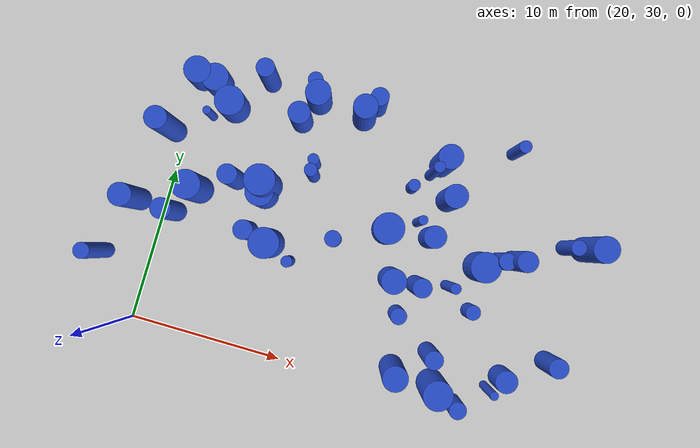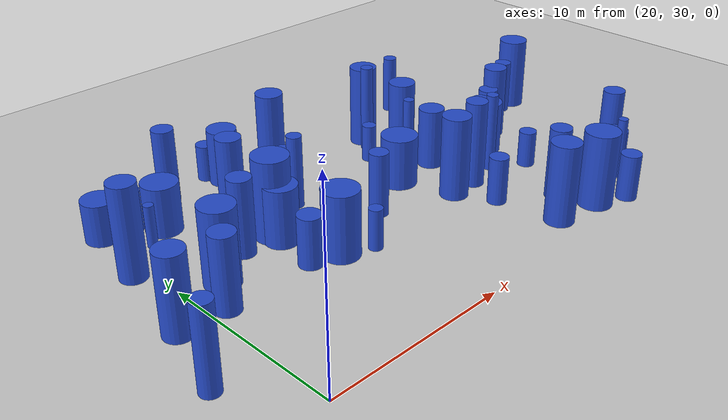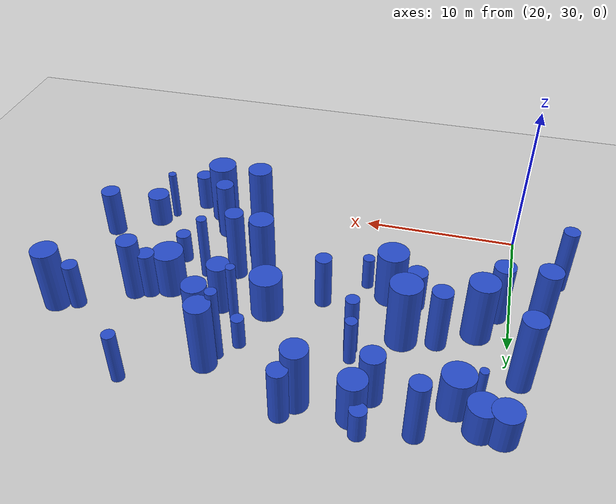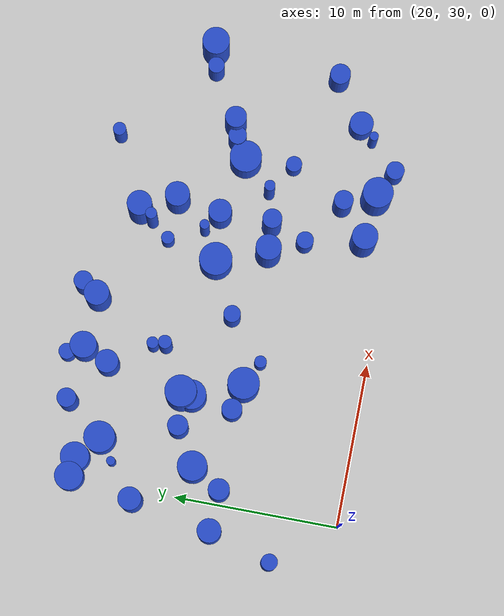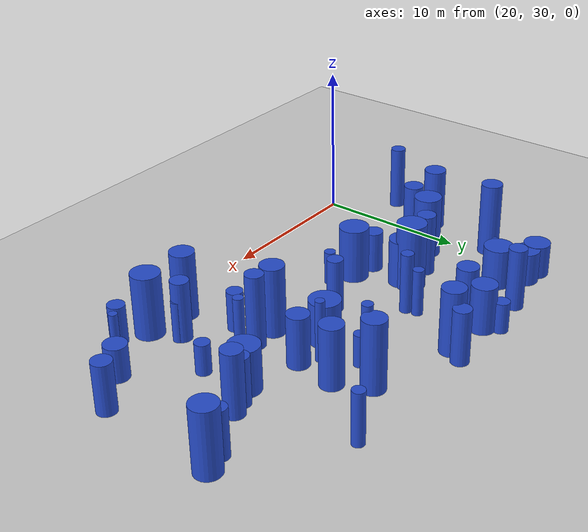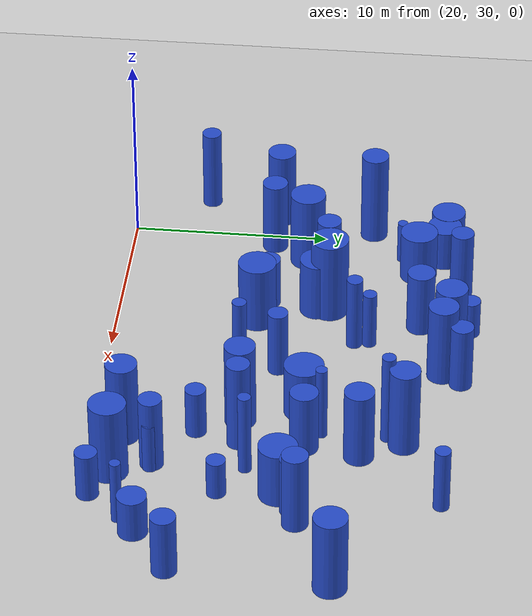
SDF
<sdf version="1.6">
 <world name="default">
  <model name="ground_plane">
   <static>1</static>
   <link name="link">
    <collision name="collision">
     <geometry><plane><normal>0 0 1</normal><size>100 100</size></plane></geometry>
     <surface><friction><ode><mu>100</mu><mu2>50</mu2></ode></friction></surface>
    </collision>
    <visual name="visual">
     <cast_shadows>0</cast_shadows>
     <geometry><plane><normal>0 0 1</normal><size>100 100</size></plane></geometry>
     <material>
      <script><uri>file://media/materials/scripts/gazebo.material</uri><name>Gazebo/Grey</name></script>
     </material>
    </visual>
   </link>
  </model>
  <model name="6">
   <static>0</static>
   <link name="link">
    <inertial>
     <mass>2</mass>
     <inertia><ixx>1.20336</ixx><ixy>0</ixy><ixz>0</ixz><iyy>1.20336</iyy><iyz>0</iyz><izz>0.750486</izz></inertia>
    </inertial>
    <collision name="collision">
     <geometry><cylinder><length>2.22906</length><radius>0.866306</radius></cylinder></geometry>
     <surface><contact><collide_without_contact>1</collide_without_contact></contact></surface>
    </collision>
    <visual name="visual">
     <geometry><cylinder><length>2.22906</length><radius>0.866306</radius></cylinder></geometry>
     <material>
      <script><uri>file://media/materials/scripts/gazebo.material</uri><name>Gazebo/Blue</name></script>
     </material>
    </visual>
    <gravity>0</gravity>
   </link>
   <pose>20.0201 46.401 1.11453 0 -0 0</pose>
  </model>
  <model name="15">
   <static>0</static>
   <link name="link">
    <inertial>
     <mass>2</mass>
     <inertia><ixx>2.62862</ixx><ixy>0</ixy><ixz>0</ixz><iyy>2.62862</iyy><iyz>0</iyz><izz>0.931065</izz></inertia>
    </inertial>
    <collision name="collision">
     <geometry><cylinder><length>3.60257</length><radius>0.964917</radius></cylinder></geometry>
     <surface><contact><collide_without_contact>1</collide_without_contact></contact></surface>
    </collision>
    <visual name="visual">
     <geometry><cylinder><length>3.60257</length><radius>0.964917</radius></cylinder></geometry>
     <material>
      <script><uri>file://media/materials/scripts/gazebo.material</uri><name>Gazebo/Blue</name></script>
     </material>
    </visual>
    <gravity>0</gravity>
   </link>
   <pose>27.3165 37.1361 1.80129 0 -0 0</pose>
  </model>
  <model name="16">
   <static>0</static>
   <link name="link">
    <inertial>
     <mass>2</mass>
     <inertia><ixx>1.97388</ixx><ixy>0</ixy><ixz>0</ixz><iyy>1.97388</iyy><iyz>0</iyz><izz>0.383371</izz></inertia>
    </inertial>
    <collision name="collision">
     <geometry><cylinder><length>3.27004</length><radius>0.619169</radius></cylinder></geometry>
     <surface><contact><collide_without_contact>1</collide_without_contact></contact></surface>
    </collision>
    <visual name="visual">
     <geometry><cylinder><length>3.27004</length><radius>0.619169</radius></cylinder></geometry>
     <material>
      <script><uri>file://media/materials/scripts/gazebo.material</uri><name>Gazebo/Blue</name></script>
     </material>
    </visual>
    <gravity>0</gravity>
   </link>
   <pose>46.7633 34.854 1.63502 0 -0 0</pose>
  </model>
  <model name="23">
   <static>0</static>
   <link name="link">
    <inertial>
     <mass>2</mass>
     <inertia>
      <ixx>1.99669</ixx>
      <ixy>0</ixy>
      <ixz>0</ixz>
      <iyy>1.99669</iyy>
      <iyz>0</iyz>
      <izz>0.0728803</izz>
     </inertia>
    </inertial>
    <collision name="collision">
     <geometry><cylinder><length>3.42951</length><radius>0.269963</radius></cylinder></geometry>
     <surface><contact><collide_without_contact>1</collide_without_contact></contact></surface>
    </collision>
    <visual name="visual">
     <geometry><cylinder><length>3.42951</length><radius>0.269963</radius></cylinder></geometry>
     <material>
      <script><uri>file://media/materials/scripts/gazebo.material</uri><name>Gazebo/Blue</name></script>
     </material>
    </visual>
    <gravity>0</gravity>
   </link>
   <pose>43.393 32.1814 1.71475 0 -0 0</pose>
  </model>
  <model name="33">
   <static>0</static>
   <link name="link">
    <inertial>
     <mass>2</mass>
     <inertia><ixx>3.32594</ixx><ixy>0</ixy><ixz>0</ixz><iyy>3.32594</iyy><iyz>0</iyz><izz>0.675286</izz></inertia>
    </inertial>
    <collision name="collision">
     <geometry><cylinder><length>4.23436</length><radius>0.821758</radius></cylinder></geometry>
     <surface><contact><collide_without_contact>1</collide_without_contact></contact></surface>
    </collision>
    <visual name="visual">
     <geometry><cylinder><length>4.23436</length><radius>0.821758</radius></cylinder></geometry>
     <material>
      <script><uri>file://media/materials/scripts/gazebo.material</uri><name>Gazebo/Blue</name></script>
     </material>
    </visual>
    <gravity>0</gravity>
   </link>
   <pose>47.2032 42.5605 2.11718 0 -0 0</pose>
  </model>
  <model name="35">
   <static>0</static>
   <link name="link">
    <inertial>
     <mass>2</mass>
     <inertia><ixx>3.57551</ixx><ixy>0</ixy><ixz>0</ixz><iyy>3.57551</iyy><iyz>0</iyz><izz>0.622149</izz></inertia>
    </inertial>
    <collision name="collision">
     <geometry><cylinder><length>4.42568</length><radius>0.788764</radius></cylinder></geometry>
     <surface><contact><collide_without_contact>1</collide_without_contact></contact></surface>
    </collision>
    <visual name="visual">
     <geometry><cylinder><length>4.42568</length><radius>0.788764</radius></cylinder></geometry>
     <material>
      <script><uri>file://media/materials/scripts/gazebo.material</uri><name>Gazebo/Blue</name></script>
     </material>
    </visual>
    <gravity>0</gravity>
   </link>
   <pose>37.2175 31.6348 2.21284 0 -0 0</pose>
  </model>
  <model name="37">
   <static>0</static>
   <link name="link">
    <inertial>
     <mass>2</mass>
     <inertia><ixx>3.28854</ixx><ixy>0</ixy><ixz>0</ixz><iyy>3.28854</iyy><iyz>0</iyz><izz>0.530708</izz></inertia>
    </inertial>
    <collision name="collision">
     <geometry><cylinder><length>4.259</length><radius>0.728497</radius></cylinder></geometry>
     <surface><contact><collide_without_contact>1</collide_without_contact></contact></surface>
    </collision>
    <visual name="visual">
     <geometry><cylinder><length>4.259</length><radius>0.728497</radius></cylinder></geometry>
     <material>
      <script><uri>file://media/materials/scripts/gazebo.material</uri><name>Gazebo/Blue</name></script>
     </material>
    </visual>
    <gravity>0</gravity>
   </link>
   <pose>18.3013 37.5129 2.1295 0 -0 0</pose>
  </model>
  <model name="43">
   <static>0</static>
   <link name="link">
    <inertial>
     <mass>2</mass>
     <inertia>
      <ixx>0.804984</ixx>
      <ixy>0</ixy>
      <ixz>0</ixz>
      <iyy>0.804984</iyy>
      <iyz>0</iyz>
      <izz>0.236242</izz>
     </inertia>
    </inertial>
    <collision name="collision">
     <geometry><cylinder><length>2.03007</length><radius>0.486048</radius></cylinder></geometry>
     <surface><contact><collide_without_contact>1</collide_without_contact></contact></surface>
    </collision>
    <visual name="visual">
     <geometry><cylinder><length>2.03007</length><radius>0.486048</radius></cylinder></geometry>
     <material>
      <script><uri>file://media/materials/scripts/gazebo.material</uri><name>Gazebo/Blue</name></script>
     </material>
    </visual>
    <gravity>0</gravity>
   </link>
   <pose>27.3471 47.9507 1.01503 0 -0 0</pose>
  </model>
  <model name="44">
   <static>0</static>
   <link name="link">
    <inertial>
     <mass>2</mass>
     <inertia><ixx>4.17462</ixx><ixy>0</ixy><ixz>0</ixz><iyy>4.17462</iyy><iyz>0</iyz><izz>0.119229</izz></inertia>
    </inertial>
    <collision name="collision">
     <geometry><cylinder><length>4.96891</length><radius>0.345295</radius></cylinder></geometry>
     <surface><contact><collide_without_contact>1</collide_without_contact></contact></surface>
    </collision>
    <visual name="visual">
     <geometry><cylinder><length>4.96891</length><radius>0.345295</radius></cylinder></geometry>
     <material>
      <script><uri>file://media/materials/scripts/gazebo.material</uri><name>Gazebo/Blue</name></script>
     </material>
    </visual>
    <gravity>0</gravity>
   </link>
   <pose>36.1613 44.4005 2.48445 0 -0 0</pose>
  </model>
  <model name="55">
   <static>0</static>
   <link name="link">
    <inertial>
     <mass>2</mass>
     <inertia><ixx>3.00682</ixx><ixy>0</ixy><ixz>0</ixz><iyy>3.00682</iyy><iyz>0</iyz><izz>0.336828</izz></inertia>
    </inertial>
    <collision name="collision">
     <geometry><cylinder><length>4.1268</length><radius>0.580369</radius></cylinder></geometry>
     <surface><contact><collide_without_contact>1</collide_without_contact></contact></surface>
    </collision>
    <visual name="visual">
     <geometry><cylinder><length>4.1268</length><radius>0.580369</radius></cylinder></geometry>
     <material>
      <script><uri>file://media/materials/scripts/gazebo.material</uri><name>Gazebo/Blue</name></script>
     </material>
    </visual>
    <gravity>0</gravity>
   </link>
   <pose>24.4847 47.3087 2.0634 0 -0 0</pose>
  </model>
  <model name="56">
   <static>0</static>
   <link name="link">
    <inertial>
     <mass>2</mass>
     <inertia>
      <ixx>0.820719</ixx>
      <ixy>0</ixy>
      <ixz>0</ixz>
      <iyy>0.820719</iyy>
      <iyz>0</iyz>
      <izz>0.154265</izz>
     </inertia>
    </inertial>
    <collision name="collision">
     <geometry><cylinder><length>2.11223</length><radius>0.392766</radius></cylinder></geometry>
     <surface><contact><collide_without_contact>1</collide_without_contact></contact></surface>
    </collision>
    <visual name="visual">
     <geometry><cylinder><length>2.11223</length><radius>0.392766</radius></cylinder></geometry>
     <material>
      <script><uri>file://media/materials/scripts/gazebo.material</uri><name>Gazebo/Blue</name></script>
     </material>
    </visual>
    <gravity>0</gravity>
   </link>
   <pose>35.2204 43.2712 1.05612 0 -0 0</pose>
  </model>
  <model name="57">
   <static>0</static>
   <link name="link">
    <inertial>
     <mass>2</mass>
     <inertia><ixx>1.80639</ixx><ixy>0</ixy><ixz>0</ixz><iyy>1.80639</iyy><iyz>0</iyz><izz>0.301855</izz></inertia>
    </inertial>
    <collision name="collision">
     <geometry><cylinder><length>3.15163</length><radius>0.549413</radius></cylinder></geometry>
     <surface><contact><collide_without_contact>1</collide_without_contact></contact></surface>
    </collision>
    <visual name="visual">
     <geometry><cylinder><length>3.15163</length><radius>0.549413</radius></cylinder></geometry>
     <material>
      <script><uri>file://media/materials/scripts/gazebo.material</uri><name>Gazebo/Blue</name></script>
     </material>
    </visual>
    <gravity>0</gravity>
   </link>
   <pose>41.9771 40.2594 1.57581 0 -0 0</pose>
  </model>
  <model name="61">
   <static>0</static>
   <link name="link">
    <inertial>
     <mass>2</mass>
     <inertia><ixx>1.07857</ixx><ixy>0</ixy><ixz>0</ixz><iyy>1.07857</iyy><iyz>0</iyz><izz>0.520724</izz></inertia>
    </inertial>
    <collision name="collision">
     <geometry><cylinder><length>2.21568</length><radius>0.721612</radius></cylinder></geometry>
     <surface><contact><collide_without_contact>1</collide_without_contact></contact></surface>
    </collision>
    <visual name="visual">
     <geometry><cylinder><length>2.21568</length><radius>0.721612</radius></cylinder></geometry>
     <material>
      <script><uri>file://media/materials/scripts/gazebo.material</uri><name>Gazebo/Blue</name></script>
     </material>
    </visual>
    <gravity>0</gravity>
   </link>
   <pose>44.2138 33.044 1.10784 0 -0 0</pose>
  </model>
  <model name="69">
   <static>0</static>
   <link name="link">
    <inertial>
     <mass>2</mass>
     <inertia><ixx>1.84567</ixx><ixy>0</ixy><ixz>0</ixz><iyy>1.84567</iyy><iyz>0</iyz><izz>0.999192</izz></inertia>
    </inertial>
    <collision name="collision">
     <geometry><cylinder><length>2.8419</length><radius>0.999596</radius></cylinder></geometry>
     <surface><contact><collide_without_contact>1</collide_without_contact></contact></surface>
    </collision>
    <visual name="visual">
     <geometry><cylinder><length>2.8419</length><radius>0.999596</radius></cylinder></geometry>
     <material>
      <script><uri>file://media/materials/scripts/gazebo.material</uri><name>Gazebo/Blue</name></script>
     </material>
    </visual>
    <gravity>0</gravity>
   </link>
   <pose>34.4167 40.1677 1.42095 0 -0 0</pose>
  </model>
  <model name="70">
   <static>0</static>
   <link name="link">
    <inertial>
     <mass>2</mass>
     <inertia><ixx>3.11179</ixx><ixy>0</ixy><ixz>0</ixz><iyy>3.11179</iyy><iyz>0</iyz><izz>0.421659</izz></inertia>
    </inertial>
    <collision name="collision">
     <geometry><cylinder><length>4.17202</length><radius>0.649353</radius></cylinder></geometry>
     <surface><contact><collide_without_contact>1</collide_without_contact></contact></surface>
    </collision>
    <visual name="visual">
     <geometry><cylinder><length>4.17202</length><radius>0.649353</radius></cylinder></geometry>
     <material>
      <script><uri>file://media/materials/scripts/gazebo.material</uri><name>Gazebo/Blue</name></script>
     </material>
    </visual>
    <gravity>0</gravity>
   </link>
   <pose>42.8961 40.535 2.08601 0 -0 0</pose>
  </model>
  <model name="76">
   <static>0</static>
   <link name="link">
    <inertial>
     <mass>2</mass>
     <inertia><ixx>1.41605</ixx><ixy>0</ixy><ixz>0</ixz><iyy>1.41605</iyy><iyz>0</iyz><izz>0.391763</izz></inertia>
    </inertial>
    <collision name="collision">
     <geometry><cylinder><length>2.70574</length><radius>0.62591</radius></cylinder></geometry>
     <surface><contact><collide_without_contact>1</collide_without_contact></contact></surface>
    </collision>
    <visual name="visual">
     <geometry><cylinder><length>2.70574</length><radius>0.62591</radius></cylinder></geometry>
     <material>
      <script><uri>file://media/materials/scripts/gazebo.material</uri><name>Gazebo/Blue</name></script>
     </material>
    </visual>
    <gravity>0</gravity>
   </link>
   <pose>25.7306 37.5397 1.35287 0 -0 0</pose>
  </model>
  <model name="91">
   <static>0</static>
   <link name="link">
    <inertial>
     <mass>2</mass>
     <inertia><ixx>3.82607</ixx><ixy>0</ixy><ixz>0</ixz><iyy>3.82607</iyy><iyz>0</iyz><izz>0.596491</izz></inertia>
    </inertial>
    <collision name="collision">
     <geometry><cylinder><length>4.60076</length><radius>0.772328</radius></cylinder></geometry>
     <surface><contact><collide_without_contact>1</collide_without_contact></contact></surface>
    </collision>
    <visual name="visual">
     <geometry><cylinder><length>4.60076</length><radius>0.772328</radius></cylinder></geometry>
     <material>
      <script><uri>file://media/materials/scripts/gazebo.material</uri><name>Gazebo/Blue</name></script>
     </material>
    </visual>
    <gravity>0</gravity>
   </link>
   <pose>35.4947 37.1578 2.30038 0 -0 0</pose>
  </model>
  <model name="101">
   <static>0</static>
   <link name="link">
    <inertial>
     <mass>2</mass>
     <inertia><ixx>2.01847</ixx><ixy>0</ixy><ixz>0</ixz><iyy>2.01847</iyy><iyz>0</iyz><izz>0.154178</izz></inertia>
    </inertial>
    <collision name="collision">
     <geometry><cylinder><length>3.41296</length><radius>0.392655</radius></cylinder></geometry>
     <surface><contact><collide_without_contact>1</collide_without_contact></contact></surface>
    </collision>
    <visual name="visual">
     <geometry><cylinder><length>3.41296</length><radius>0.392655</radius></cylinder></geometry>
     <material>
      <script><uri>file://media/materials/scripts/gazebo.material</uri><name>Gazebo/Blue</name></script>
     </material>
    </visual>
    <gravity>0</gravity>
   </link>
   <pose>41.0047 47.2972 1.70648 0 -0 0</pose>
  </model>
  <model name="104">
   <static>0</static>
   <link name="link">
    <inertial>
     <mass>2</mass>
     <inertia><ixx>1.19968</ixx><ixy>0</ixy><ixz>0</ixz><iyy>1.19968</iyy><iyz>0</iyz><izz>0.772075</izz></inertia>
    </inertial>
    <collision name="collision">
     <geometry><cylinder><length>2.2095</length><radius>0.878678</radius></cylinder></geometry>
     <surface><contact><collide_without_contact>1</collide_without_contact></contact></surface>
    </collision>
    <visual name="visual">
     <geometry><cylinder><length>2.2095</length><radius>0.878678</radius></cylinder></geometry>
     <material>
      <script><uri>file://media/materials/scripts/gazebo.material</uri><name>Gazebo/Blue</name></script>
     </material>
    </visual>
    <gravity>0</gravity>
   </link>
   <pose>21.2228 46.2715 1.10475 0 -0 0</pose>
  </model>
  <model name="125">
   <static>0</static>
   <link name="link">
    <inertial>
     <mass>2</mass>
     <inertia><ixx>2.05411</ixx><ixy>0</ixy><ixz>0</ixz><iyy>2.05411</iyy><iyz>0</iyz><izz>0.805344</izz></inertia>
    </inertial>
    <collision name="collision">
     <geometry><cylinder><length>3.14779</length><radius>0.897409</radius></cylinder></geometry>
     <surface><contact><collide_without_contact>1</collide_without_contact></contact></surface>
    </collision>
    <visual name="visual">
     <geometry><cylinder><length>3.14779</length><radius>0.897409</radius></cylinder></geometry>
     <material>
      <script><uri>file://media/materials/scripts/gazebo.material</uri><name>Gazebo/Blue</name></script>
     </material>
    </visual>
    <gravity>0</gravity>
   </link>
   <pose>26.1023 40.0757 1.5739 0 -0 0</pose>
  </model>
  <model name="126">
   <static>0</static>
   <link name="link">
    <inertial>
     <mass>2</mass>
     <inertia><ixx>1.27835</ixx><ixy>0</ixy><ixz>0</ixz><iyy>1.27835</iyy><iyz>0</iyz><izz>0.146754</izz></inertia>
    </inertial>
    <collision name="collision">
     <geometry><cylinder><length>2.68883</length><radius>0.383085</radius></cylinder></geometry>
     <surface><contact><collide_without_contact>1</collide_without_contact></contact></surface>
    </collision>
    <visual name="visual">
     <geometry><cylinder><length>2.68883</length><radius>0.383085</radius></cylinder></geometry>
     <material>
      <script><uri>file://media/materials/scripts/gazebo.material</uri><name>Gazebo/Blue</name></script>
     </material>
    </visual>
    <gravity>0</gravity>
   </link>
   <pose>39.4717 33.2369 1.34442 0 -0 0</pose>
  </model>
  <model name="138">
   <static>0</static>
   <link name="link">
    <inertial>
     <mass>2</mass>
     <inertia><ixx>3.27687</ixx><ixy>0</ixy><ixz>0</ixz><iyy>3.27687</iyy><iyz>0</iyz><izz>0.818625</izz></inertia>
    </inertial>
    <collision name="collision">
     <geometry><cylinder><length>4.14793</length><radius>0.904779</radius></cylinder></geometry>
     <surface><contact><collide_without_contact>1</collide_without_contact></contact></surface>
    </collision>
    <visual name="visual">
     <geometry><cylinder><length>4.14793</length><radius>0.904779</radius></cylinder></geometry>
     <material>
      <script><uri>file://media/materials/scripts/gazebo.material</uri><name>Gazebo/Blue</name></script>
     </material>
    </visual>
    <gravity>0</gravity>
   </link>
   <pose>21.8823 39.2124 2.07397 0 -0 0</pose>
  </model>
  <model name="139">
   <static>0</static>
   <link name="link">
    <inertial>
     <mass>2</mass>
     <inertia><ixx>1.67274</ixx><ixy>0</ixy><ixz>0</ixz><iyy>1.67274</iyy><iyz>0</iyz><izz>0.124676</izz></inertia>
    </inertial>
    <collision name="collision">
     <geometry><cylinder><length>3.10844</length><radius>0.353094</radius></cylinder></geometry>
     <surface><contact><collide_without_contact>1</collide_without_contact></contact></surface>
    </collision>
    <visual name="visual">
     <geometry><cylinder><length>3.10844</length><radius>0.353094</radius></cylinder></geometry>
     <material>
      <script><uri>file://media/materials/scripts/gazebo.material</uri><name>Gazebo/Blue</name></script>
     </material>
    </visual>
    <gravity>0</gravity>
   </link>
   <pose>28.732 42.9388 1.55422 0 -0 0</pose>
  </model>
  <model name="152">
   <static>0</static>
   <link name="link">
    <inertial>
     <mass>2</mass>
     <inertia><ixx>2.2067</ixx><ixy>0</ixy><ixz>0</ixz><iyy>2.2067</iyy><iyz>0</iyz><izz>0.493138</izz></inertia>
    </inertial>
    <collision name="collision">
     <geometry><cylinder><length>3.4294</length><radius>0.702238</radius></cylinder></geometry>
     <surface><contact><collide_without_contact>1</collide_without_contact></contact></surface>
    </collision>
    <visual name="visual">
     <geometry><cylinder><length>3.4294</length><radius>0.702238</radius></cylinder></geometry>
     <material>
      <script><uri>file://media/materials/scripts/gazebo.material</uri><name>Gazebo/Blue</name></script>
     </material>
    </visual>
    <gravity>0</gravity>
   </link>
   <pose>27.1111 45.4034 1.7147 0 -0 0</pose>
  </model>
  <model name="155">
   <static>0</static>
   <link name="link">
    <inertial>
     <mass>2</mass>
     <inertia><ixx>2.79613</ixx><ixy>0</ixy><ixz>0</ixz><iyy>2.79613</iyy><iyz>0</iyz><izz>0.33972</izz></inertia>
    </inertial>
    <collision name="collision">
     <geometry><cylinder><length>3.96959</length><radius>0.582855</radius></cylinder></geometry>
     <surface><contact><collide_without_contact>1</collide_without_contact></contact></surface>
    </collision>
    <visual name="visual">
     <geometry><cylinder><length>3.96959</length><radius>0.582855</radius></cylinder></geometry>
     <material>
      <script><uri>file://media/materials/scripts/gazebo.material</uri><name>Gazebo/Blue</name></script>
     </material>
    </visual>
    <gravity>0</gravity>
   </link>
   <pose>39.1888 33.2764 1.98479 0 -0 0</pose>
  </model>
  <model name="157">
   <static>0</static>
   <link name="link">
    <inertial>
     <mass>2</mass>
     <inertia><ixx>2.20597</ixx><ixy>0</ixy><ixz>0</ixz><iyy>2.20597</iyy><iyz>0</iyz><izz>0.263443</izz></inertia>
    </inertial>
    <collision name="collision">
     <geometry><cylinder><length>3.52782</length><radius>0.513267</radius></cylinder></geometry>
     <surface><contact><collide_without_contact>1</collide_without_contact></contact></surface>
    </collision>
    <visual name="visual">
     <geometry><cylinder><length>3.52782</length><radius>0.513267</radius></cylinder></geometry>
     <material>
      <script><uri>file://media/materials/scripts/gazebo.material</uri><name>Gazebo/Blue</name></script>
     </material>
    </visual>
    <gravity>0</gravity>
   </link>
   <pose>31.2714 38.576 1.76391 0 -0 0</pose>
  </model>
  <model name="164">
   <static>0</static>
   <link name="link">
    <inertial>
     <mass>2</mass>
     <inertia>
      <ixx>0.892285</ixx>
      <ixy>0</ixy>
      <ixz>0</ixz>
      <iyy>0.892285</iyy>
      <iyz>0</iyz>
      <izz>0.135606</izz>
     </inertia>
    </inertial>
    <collision name="collision">
     <geometry><cylinder><length>2.22416</length><radius>0.368248</radius></cylinder></geometry>
     <surface><contact><collide_without_contact>1</collide_without_contact></contact></surface>
    </collision>
    <visual name="visual">
     <geometry><cylinder><length>2.22416</length><radius>0.368248</radius></cylinder></geometry>
     <material>
      <script><uri>file://media/materials/scripts/gazebo.material</uri><name>Gazebo/Blue</name></script>
     </material>
    </visual>
    <gravity>0</gravity>
   </link>
   <pose>28.8637 36.3832 1.11208 0 -0 0</pose>
  </model>
  <model name="167">
   <static>0</static>
   <link name="link">
    <inertial>
     <mass>2</mass>
     <inertia><ixx>2.17863</ixx><ixy>0</ixy><ixz>0</ixz><iyy>2.17863</iyy><iyz>0</iyz><izz>0.500436</izz></inertia>
    </inertial>
    <collision name="collision">
     <geometry><cylinder><length>3.40154</length><radius>0.707415</radius></cylinder></geometry>
     <surface><contact><collide_without_contact>1</collide_without_contact></contact></surface>
    </collision>
    <visual name="visual">
     <geometry><cylinder><length>3.40154</length><radius>0.707415</radius></cylinder></geometry>
     <material>
      <script><uri>file://media/materials/scripts/gazebo.material</uri><name>Gazebo/Blue</name></script>
     </material>
    </visual>
    <gravity>0</gravity>
   </link>
   <pose>37.2531 40.4364 1.70077 0 -0 0</pose>
  </model>
  <model name="168">
   <static>0</static>
   <link name="link">
    <inertial>
     <mass>2</mass>
     <inertia><ixx>2.95687</ixx><ixy>0</ixy><ixz>0</ixz><iyy>2.95687</iyy><iyz>0</iyz><izz>0.556432</izz></inertia>
    </inertial>
    <collision name="collision">
     <geometry><cylinder><length>4.00898</length><radius>0.745944</radius></cylinder></geometry>
     <surface><contact><collide_without_contact>1</collide_without_contact></contact></surface>
    </collision>
    <visual name="visual">
     <geometry><cylinder><length>4.00898</length><radius>0.745944</radius></cylinder></geometry>
     <material>
      <script><uri>file://media/materials/scripts/gazebo.material</uri><name>Gazebo/Blue</name></script>
     </material>
    </visual>
    <gravity>0</gravity>
   </link>
   <pose>37.7024 43.1218 2.00449 0 -0 0</pose>
  </model>
  <model name="169">
   <static>0</static>
   <link name="link">
    <inertial>
     <mass>2</mass>
     <inertia><ixx>3.76945</ixx><ixy>0</ixy><ixz>0</ixz><iyy>3.76945</iyy><iyz>0</iyz><izz>0.924048</izz></inertia>
    </inertial>
    <collision name="collision">
     <geometry><cylinder><length>4.45473</length><radius>0.961274</radius></cylinder></geometry>
     <surface><contact><collide_without_contact>1</collide_without_contact></contact></surface>
    </collision>
    <visual name="visual">
     <geometry><cylinder><length>4.45473</length><radius>0.961274</radius></cylinder></geometry>
     <material>
      <script><uri>file://media/materials/scripts/gazebo.material</uri><name>Gazebo/Blue</name></script>
     </material>
    </visual>
    <gravity>0</gravity>
   </link>
   <pose>26.111 40.706 2.22736 0 -0 0</pose>
  </model>
  <model name="171">
   <static>0</static>
   <link name="link">
    <inertial>
     <mass>2</mass>
     <inertia>
      <ixx>2.71791</ixx>
      <ixy>0</ixy>
      <ixz>0</ixz>
      <iyy>2.71791</iyy>
      <iyz>0</iyz>
      <izz>0.0859131</izz>
     </inertia>
    </inertial>
    <collision name="collision">
     <geometry><cylinder><length>4.00621</length><radius>0.293109</radius></cylinder></geometry>
     <surface><contact><collide_without_contact>1</collide_without_contact></contact></surface>
    </collision>
    <visual name="visual">
     <geometry><cylinder><length>4.00621</length><radius>0.293109</radius></cylinder></geometry>
     <material>
      <script><uri>file://media/materials/scripts/gazebo.material</uri><name>Gazebo/Blue</name></script>
     </material>
    </visual>
    <gravity>0</gravity>
   </link>
   <pose>36.199 41.1788 2.0031 0 -0 0</pose>
  </model>
  <model name="176">
   <static>0</static>
   <link name="link">
    <inertial>
     <mass>2</mass>
     <inertia><ixx>4.07604</ixx><ixy>0</ixy><ixz>0</ixz><iyy>4.07604</iyy><iyz>0</iyz><izz>0.341862</izz></inertia>
    </inertial>
    <collision name="collision">
     <geometry><cylinder><length>4.84052</length><radius>0.58469</radius></cylinder></geometry>
     <surface><contact><collide_without_contact>1</collide_without_contact></contact></surface>
    </collision>
    <visual name="visual">
     <geometry><cylinder><length>4.84052</length><radius>0.58469</radius></cylinder></geometry>
     <material>
      <script><uri>file://media/materials/scripts/gazebo.material</uri><name>Gazebo/Blue</name></script>
     </material>
    </visual>
    <gravity>0</gravity>
   </link>
   <pose>37.1938 37.2575 2.42026 0 -0 0</pose>
  </model>
  <model name="179">
   <static>0</static>
   <link name="link">
    <inertial>
     <mass>2</mass>
     <inertia><ixx>1.6669</ixx><ixy>0</ixy><ixz>0</ixz><iyy>1.6669</iyy><iyz>0</iyz><izz>0.903977</izz></inertia>
    </inertial>
    <collision name="collision">
     <geometry><cylinder><length>2.69991</length><radius>0.950777</radius></cylinder></geometry>
     <surface><contact><collide_without_contact>1</collide_without_contact></contact></surface>
    </collision>
    <visual name="visual">
     <geometry><cylinder><length>2.69991</length><radius>0.950777</radius></cylinder></geometry>
     <material>
      <script><uri>file://media/materials/scripts/gazebo.material</uri><name>Gazebo/Blue</name></script>
     </material>
    </visual>
    <gravity>0</gravity>
   </link>
   <pose>22.6285 45.0202 1.34995 0 -0 0</pose>
  </model>
  <model name="182">
   <static>0</static>
   <link name="link">
    <inertial>
     <mass>2</mass>
     <inertia>
      <ixx>0.917081</ixx>
      <ixy>0</ixy>
      <ixz>0</ixz>
      <iyy>0.917081</iyy>
      <iyz>0</iyz>
      <izz>0.0700442</izz>
     </inertia>
    </inertial>
    <collision name="collision">
     <geometry><cylinder><length>2.30051</length><radius>0.264659</radius></cylinder></geometry>
     <surface><contact><collide_without_contact>1</collide_without_contact></contact></surface>
    </collision>
    <visual name="visual">
     <geometry><cylinder><length>2.30051</length><radius>0.264659</radius></cylinder></geometry>
     <material>
      <script><uri>file://media/materials/scripts/gazebo.material</uri><name>Gazebo/Blue</name></script>
     </material>
    </visual>
    <gravity>0</gravity>
   </link>
   <pose>21.3585 44.0959 1.15026 0 -0 0</pose>
  </model>
  <model name="189">
   <static>0</static>
   <link name="link">
    <inertial>
     <mass>2</mass>
     <inertia><ixx>3.3322</ixx><ixy>0</ixy><ixz>0</ixz><iyy>3.3322</iyy><iyz>0</iyz><izz>0.849902</izz></inertia>
    </inertial>
    <collision name="collision">
     <geometry><cylinder><length>4.17654</length><radius>0.921901</radius></cylinder></geometry>
     <surface><contact><collide_without_contact>1</collide_without_contact></contact></surface>
    </collision>
    <visual name="visual">
     <geometry><cylinder><length>4.17654</length><radius>0.921901</radius></cylinder></geometry>
     <material>
      <script><uri>file://media/materials/scripts/gazebo.material</uri><name>Gazebo/Blue</name></script>
     </material>
    </visual>
    <gravity>0</gravity>
   </link>
   <pose>39.9815 31.3426 2.08827 0 -0 0</pose>
  </model>
  <model name="194">
   <static>0</static>
   <link name="link">
    <inertial>
     <mass>2</mass>
     <inertia><ixx>2.29737</ixx><ixy>0</ixy><ixz>0</ixz><iyy>2.29737</iyy><iyz>0</iyz><izz>0.327553</izz></inertia>
    </inertial>
    <collision name="collision">
     <geometry><cylinder><length>3.57792</length><radius>0.572323</radius></cylinder></geometry>
     <surface><contact><collide_without_contact>1</collide_without_contact></contact></surface>
    </collision>
    <visual name="visual">
     <geometry><cylinder><length>3.57792</length><radius>0.572323</radius></cylinder></geometry>
     <material>
      <script><uri>file://media/materials/scripts/gazebo.material</uri><name>Gazebo/Blue</name></script>
     </material>
    </visual>
    <gravity>0</gravity>
   </link>
   <pose>31.5987 47.6939 1.78896 0 -0 0</pose>
  </model>
  <model name="201">
   <static>0</static>
   <link name="link">
    <inertial>
     <mass>2</mass>
     <inertia><ixx>3.36513</ixx><ixy>0</ixy><ixz>0</ixz><iyy>3.36513</iyy><iyz>0</iyz><izz>0.250759</izz></inertia>
    </inertial>
    <collision name="collision">
     <geometry><cylinder><length>4.40891</length><radius>0.500758</radius></cylinder></geometry>
     <surface><contact><collide_without_contact>1</collide_without_contact></contact></surface>
    </collision>
    <visual name="visual">
     <geometry><cylinder><length>4.40891</length><radius>0.500758</radius></cylinder></geometry>
     <material>
      <script><uri>file://media/materials/scripts/gazebo.material</uri><name>Gazebo/Blue</name></script>
     </material>
    </visual>
    <gravity>0</gravity>
   </link>
   <pose>17.1315 33.6689 2.20445 0 -0 0</pose>
  </model>
  <model name="202">
   <static>0</static>
   <link name="link">
    <inertial>
     <mass>2</mass>
     <inertia><ixx>3.3605</ixx><ixy>0</ixy><ixz>0</ixz><iyy>3.3605</iyy><iyz>0</iyz><izz>0.579654</izz></inertia>
    </inertial>
    <collision name="collision">
     <geometry><cylinder><length>4.29233</length><radius>0.76135</radius></cylinder></geometry>
     <surface><contact><collide_without_contact>1</collide_without_contact></contact></surface>
    </collision>
    <visual name="visual">
     <geometry><cylinder><length>4.29233</length><radius>0.76135</radius></cylinder></geometry>
     <material>
      <script><uri>file://media/materials/scripts/gazebo.material</uri><name>Gazebo/Blue</name></script>
     </material>
    </visual>
    <gravity>0</gravity>
   </link>
   <pose>30.9537 46.7301 2.14616 0 -0 0</pose>
  </model>
  <model name="210">
   <static>0</static>
   <link name="link">
    <inertial>
     <mass>2</mass>
     <inertia>
      <ixx>0.800306</ixx>
      <ixy>0</ixy>
      <ixz>0</ixz>
      <iyy>0.800306</iyy>
      <iyz>0</iyz>
      <izz>0.228553</izz>
     </inertia>
    </inertial>
    <collision name="collision">
     <geometry><cylinder><length>2.02884</length><radius>0.478072</radius></cylinder></geometry>
     <surface><contact><collide_without_contact>1</collide_without_contact></contact></surface>
    </collision>
    <visual name="visual">
     <geometry><cylinder><length>2.02884</length><radius>0.478072</radius></cylinder></geometry>
     <material>
      <script><uri>file://media/materials/scripts/gazebo.material</uri><name>Gazebo/Blue</name></script>
     </material>
    </visual>
    <gravity>0</gravity>
   </link>
   <pose>41.036 36.6052 1.01442 0 -0 0</pose>
  </model>
  <model name="224">
   <static>0</static>
   <link name="link">
    <inertial>
     <mass>2</mass>
     <inertia><ixx>3.32048</ixx><ixy>0</ixy><ixz>0</ixz><iyy>3.32048</iyy><iyz>0</iyz><izz>0.105531</izz></inertia>
    </inertial>
    <collision name="collision">
     <geometry><cylinder><length>4.4279</length><radius>0.324856</radius></cylinder></geometry>
     <surface><contact><collide_without_contact>1</collide_without_contact></contact></surface>
    </collision>
    <visual name="visual">
     <geometry><cylinder><length>4.4279</length><radius>0.324856</radius></cylinder></geometry>
     <material>
      <script><uri>file://media/materials/scripts/gazebo.material</uri><name>Gazebo/Blue</name></script>
     </material>
    </visual>
    <gravity>0</gravity>
   </link>
   <pose>39.162 37.7705 2.21395 0 -0 0</pose>
  </model>
  <model name="225">
   <static>0</static>
   <link name="link">
    <inertial>
     <mass>2</mass>
     <inertia><ixx>1.9256</ixx><ixy>0</ixy><ixz>0</ixz><iyy>1.9256</iyy><iyz>0</iyz><izz>0.930774</izz></inertia>
    </inertial>
    <collision name="collision">
     <geometry><cylinder><length>2.95994</length><radius>0.964766</radius></cylinder></geometry>
     <surface><contact><collide_without_contact>1</collide_without_contact></contact></surface>
    </collision>
    <visual name="visual">
     <geometry><cylinder><length>2.95994</length><radius>0.964766</radius></cylinder></geometry>
     <material>
      <script><uri>file://media/materials/scripts/gazebo.material</uri><name>Gazebo/Blue</name></script>
     </material>
    </visual>
    <gravity>0</gravity>
   </link>
   <pose>40.8355 39.5384 1.47997 0 -0 0</pose>
  </model>
  <model name="226">
   <static>0</static>
   <link name="link">
    <inertial>
     <mass>2</mass>
     <inertia><ixx>3.87629</ixx><ixy>0</ixy><ixz>0</ixz><iyy>3.87629</iyy><iyz>0</iyz><izz>0.569472</izz></inertia>
    </inertial>
    <collision name="collision">
     <geometry><cylinder><length>4.64213</length><radius>0.754633</radius></cylinder></geometry>
     <surface><contact><collide_without_contact>1</collide_without_contact></contact></surface>
    </collision>
    <visual name="visual">
     <geometry><cylinder><length>4.64213</length><radius>0.754633</radius></cylinder></geometry>
     <material>
      <script><uri>file://media/materials/scripts/gazebo.material</uri><name>Gazebo/Blue</name></script>
     </material>
    </visual>
    <gravity>0</gravity>
   </link>
   <pose>36.6684 45.216 2.32106 0 -0 0</pose>
  </model>
  <model name="227">
   <static>0</static>
   <link name="link">
    <inertial>
     <mass>2</mass>
     <inertia><ixx>3.03734</ixx><ixy>0</ixy><ixz>0</ixz><iyy>3.03734</iyy><iyz>0</iyz><izz>0.384395</izz></inertia>
    </inertial>
    <collision name="collision">
     <geometry><cylinder><length>4.13169</length><radius>0.619996</radius></cylinder></geometry>
     <surface><contact><collide_without_contact>1</collide_without_contact></contact></surface>
    </collision>
    <visual name="visual">
     <geometry><cylinder><length>4.13169</length><radius>0.619996</radius></cylinder></geometry>
     <material>
      <script><uri>file://media/materials/scripts/gazebo.material</uri><name>Gazebo/Blue</name></script>
     </material>
    </visual>
    <gravity>0</gravity>
   </link>
   <pose>24.0965 40.5059 2.06584 0 -0 0</pose>
  </model>
  <model name="235">
   <static>0</static>
   <link name="link">
    <inertial>
     <mass>2</mass>
     <inertia><ixx>2.77617</ixx><ixy>0</ixy><ixz>0</ixz><iyy>2.77617</iyy><iyz>0</iyz><izz>0.166217</izz></inertia>
    </inertial>
    <collision name="collision">
     <geometry><cylinder><length>4.01975</length><radius>0.407697</radius></cylinder></geometry>
     <surface><contact><collide_without_contact>1</collide_without_contact></contact></surface>
    </collision>
    <visual name="visual">
     <geometry><cylinder><length>4.01975</length><radius>0.407697</radius></cylinder></geometry>
     <material>
      <script><uri>file://media/materials/scripts/gazebo.material</uri><name>Gazebo/Blue</name></script>
     </material>
    </visual>
    <gravity>0</gravity>
   </link>
   <pose>28.8356 42.183 2.00987 0 -0 0</pose>
  </model>
  <model name="238">
   <static>0</static>
   <link name="link">
    <inertial>
     <mass>2</mass>
     <inertia><ixx>1.75919</ixx><ixy>0</ixy><ixz>0</ixz><iyy>1.75919</iyy><iyz>0</iyz><izz>0.240714</izz></inertia>
    </inertial>
    <collision name="collision">
     <geometry><cylinder><length>3.13576</length><radius>0.490626</radius></cylinder></geometry>
     <surface><contact><collide_without_contact>1</collide_without_contact></contact></surface>
    </collision>
    <visual name="visual">
     <geometry><cylinder><length>3.13576</length><radius>0.490626</radius></cylinder></geometry>
     <material>
      <script><uri>file://media/materials/scripts/gazebo.material</uri><name>Gazebo/Blue</name></script>
     </material>
    </visual>
    <gravity>0</gravity>
   </link>
   <pose>45.9366 42.3071 1.56788 0 -0 0</pose>
  </model>
  <model name="240">
   <static>0</static>
   <link name="link">
    <inertial>
     <mass>2</mass>
     <inertia><ixx>2.89272</ixx><ixy>0</ixy><ixz>0</ixz><iyy>2.89272</iyy><iyz>0</iyz><izz>0.423857</izz></inertia>
    </inertial>
    <collision name="collision">
     <geometry><cylinder><length>4.01058</length><radius>0.651043</radius></cylinder></geometry>
     <surface><contact><collide_without_contact>1</collide_without_contact></contact></surface>
    </collision>
    <visual name="visual">
     <geometry><cylinder><length>4.01058</length><radius>0.651043</radius></cylinder></geometry>
     <material>
      <script><uri>file://media/materials/scripts/gazebo.material</uri><name>Gazebo/Blue</name></script>
     </material>
    </visual>
    <gravity>0</gravity>
   </link>
   <pose>20.8141 37.4039 2.00529 0 -0 0</pose>
  </model>
  <model name="242">
   <static>0</static>
   <link name="link">
    <inertial>
     <mass>2</mass>
     <inertia><ixx>1.25281</ixx><ixy>0</ixy><ixz>0</ixz><iyy>1.25281</iyy><iyz>0</iyz><izz>0.303901</izz></inertia>
    </inertial>
    <collision name="collision">
     <geometry><cylinder><length>2.57005</length><radius>0.551272</radius></cylinder></geometry>
     <surface><contact><collide_without_contact>1</collide_without_contact></contact></surface>
    </collision>
    <visual name="visual">
     <geometry><cylinder><length>2.57005</length><radius>0.551272</radius></cylinder></geometry>
     <material>
      <script><uri>file://media/materials/scripts/gazebo.material</uri><name>Gazebo/Blue</name></script>
     </material>
    </visual>
    <gravity>0</gravity>
   </link>
   <pose>41.7102 30.5342 1.28502 0 -0 0</pose>
  </model>
  <model name="245">
   <static>0</static>
   <link name="link">
    <inertial>
     <mass>2</mass>
     <inertia><ixx>4.39653</ixx><ixy>0</ixy><ixz>0</ixz><iyy>4.39653</iyy><iyz>0</iyz><izz>0.490635</izz></inertia>
    </inertial>
    <collision name="collision">
     <geometry><cylinder><length>4.99072</length><radius>0.700453</radius></cylinder></geometry>
     <surface><contact><collide_without_contact>1</collide_without_contact></contact></surface>
    </collision>
    <visual name="visual">
     <geometry><cylinder><length>4.99072</length><radius>0.700453</radius></cylinder></geometry>
     <material>
      <script><uri>file://media/materials/scripts/gazebo.material</uri><name>Gazebo/Blue</name></script>
     </material>
    </visual>
    <gravity>0</gravity>
   </link>
   <pose>19.2727 42.471 2.49536 0 -0 0</pose>
  </model>
  <model name="248">
   <static>0</static>
   <link name="link">
    <inertial>
     <mass>2</mass>
     <inertia><ixx>1.27917</ixx><ixy>0</ixy><ixz>0</ixz><iyy>1.27917</iyy><iyz>0</iyz><izz>0.271795</izz></inertia>
    </inertial>
    <collision name="collision">
     <geometry><cylinder><length>2.61909</length><radius>0.521339</radius></cylinder></geometry>
     <surface><contact><collide_without_contact>1</collide_without_contact></contact></surface>
    </collision>
    <visual name="visual">
     <geometry><cylinder><length>2.61909</length><radius>0.521339</radius></cylinder></geometry>
     <material>
      <script><uri>file://media/materials/scripts/gazebo.material</uri><name>Gazebo/Blue</name></script>
     </material>
    </visual>
    <gravity>0</gravity>
   </link>
   <pose>36.5397 35.1037 1.30954 0 -0 0</pose>
  </model>
  <model name="249">
   <static>0</static>
   <link name="link">
    <inertial>
     <mass>2</mass>
     <inertia><ixx>1.94683</ixx><ixy>0</ixy><ixz>0</ixz><iyy>1.94683</iyy><iyz>0</iyz><izz>0.657921</izz></inertia>
    </inertial>
    <collision name="collision">
     <geometry><cylinder><length>3.11564</length><radius>0.811123</radius></cylinder></geometry>
     <surface><contact><collide_without_contact>1</collide_without_contact></contact></surface>
    </collision>
    <visual name="visual">
     <geometry><cylinder><length>3.11564</length><radius>0.811123</radius></cylinder></geometry>
     <material>
      <script><uri>file://media/materials/scripts/gazebo.material</uri><name>Gazebo/Blue</name></script>
     </material>
    </visual>
    <gravity>0</gravity>
   </link>
   <pose>27.8472 46.9874 1.55782 0 -0 0</pose>
  </model>
 </world>
</sdf>
